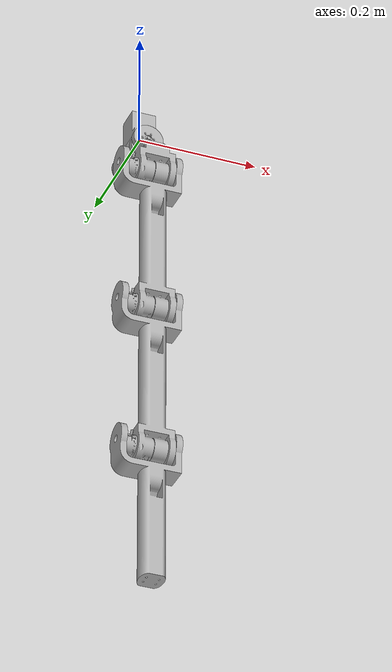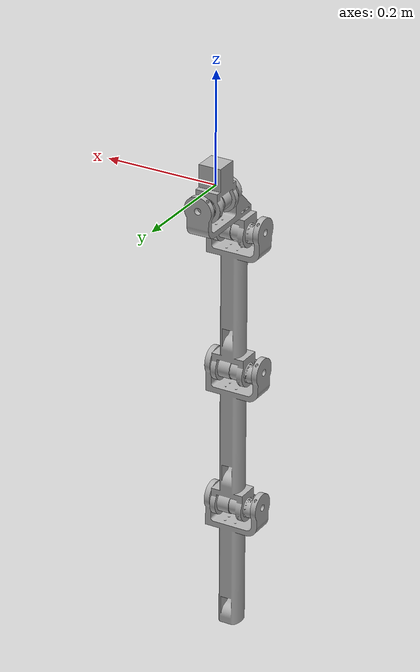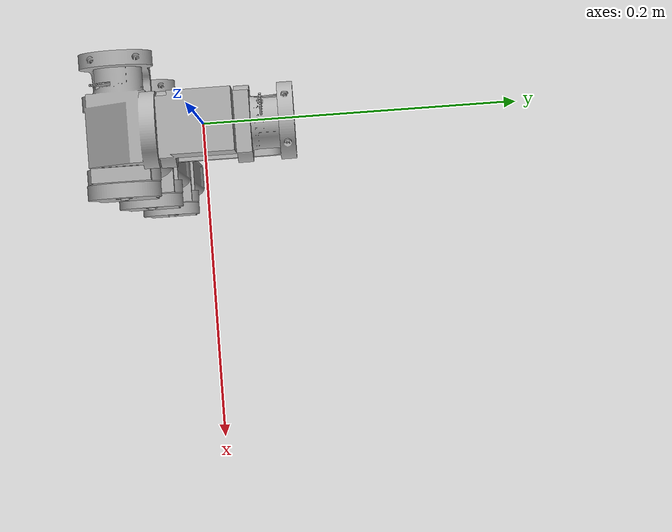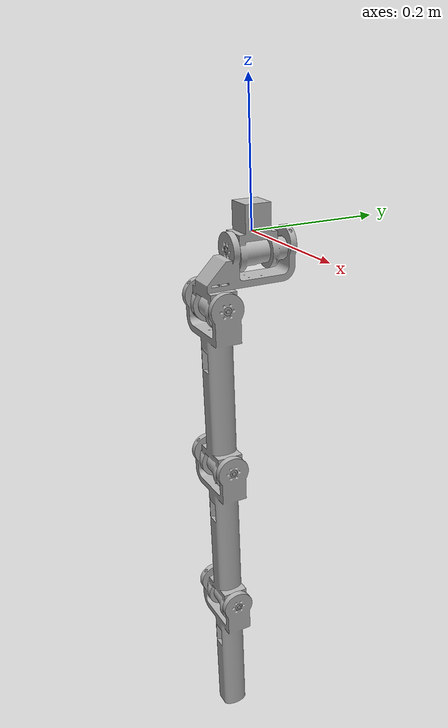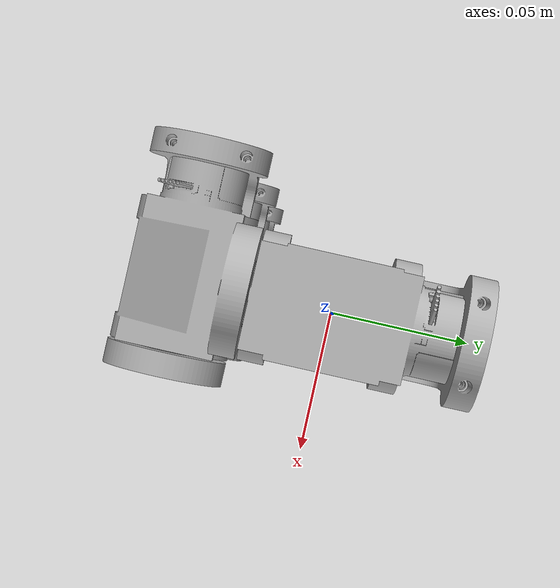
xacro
<?xml version="1.0" ?>
<robot name="robotleg_0_1" xmlns:xacro="http://www.ros.org/wiki/xacro">

<xacro:include filename="$(find robotleg_0_1_description)/urdf/materials.xacro" />
<xacro:include filename="$(find robotleg_0_1_description)/urdf/robotleg_0_1.trans" />
<xacro:include filename="$(find robotleg_0_1_description)/urdf/robotleg_0_1.gazebo" />
<link name="base_link">
  <inertial>
    <origin rpy="0 0 0" xyz="-9.369973914028342e-06 0.001690566162448438 -0.008146420072387993"/>
    <mass value="1.3507716732240094"/>
    <inertia ixx="0.001302" ixy="0.0" ixz="-0.0" iyy="0.001034" iyz="4.9e-05" izz="0.000604"/>
  </inertial>
  <visual>
    <origin rpy="0 0 0" xyz="0 0 0"/>
    <geometry>
      <mesh filename="package://robotleg_0_1_description/meshes/base_link.stl" scale="0.001 0.001 0.001"/>
    </geometry>
    <material name="silver_default"/>
  </visual>
  <collision>
    <origin rpy="0 0 0" xyz="0 0 0"/>
    <geometry>
      <mesh filename="package://robotleg_0_1_description/meshes/base_link.stl" scale="0.001 0.001 0.001"/>
    </geometry>
  </collision>
</link>

<link name="joint_3">
  <inertial>
    <origin rpy="0 0 0" xyz="1.441120806777516e-06 0.008079805361456853 0.00018129790863215256"/>
    <mass value="0.0197994934350134"/>
    <inertia ixx="1e-06" ixy="0.0" ixz="0.0" iyy="2e-06" iyz="0.0" izz="1e-06"/>
  </inertial>
  <visual>
    <origin rpy="0 0 0" xyz="-0.0 0.042 0.023"/>
    <geometry>
      <mesh filename="package://robotleg_0_1_description/meshes/joint_3.stl" scale="0.001 0.001 0.001"/>
    </geometry>
    <material name="silver_default"/>
  </visual>
  <collision>
    <origin rpy="0 0 0" xyz="-0.0 0.042 0.023"/>
    <geometry>
      <mesh filename="package://robotleg_0_1_description/meshes/joint_3.stl" scale="0.001 0.001 0.001"/>
    </geometry>
  </collision>
</link>

<link name="link1_1">
  <inertial>
    <origin rpy="0 0 0" xyz="0.020807189366088122 -0.016765663276947233 -0.07776140281647813"/>
    <mass value="1.8576009926494503"/>
    <inertia ixx="0.004643" ixy="-5.9e-05" ixz="-6.9e-05" iyy="0.002099" iyz="-0.001197" izz="0.003578"/>
  </inertial>
  <visual>
    <origin rpy="0 0 0" xyz="0.022024 0.018549 -0.005622"/>
    <geometry>
      <mesh filename="package://robotleg_0_1_description/meshes/link1_1.stl" scale="0.001 0.001 0.001"/>
    </geometry>
    <material name="silver_default"/>
  </visual>
  <collision>
    <origin rpy="0 0 0" xyz="0.022024 0.018549 -0.005622"/>
    <geometry>
      <mesh filename="package://robotleg_0_1_description/meshes/link1_1.stl" scale="0.001 0.001 0.001"/>
    </geometry>
  </collision>
</link>

<link name="joint_6">
  <inertial>
    <origin rpy="0 0 0" xyz="-0.023992305361456905 -0.12347655887919318 -0.12661905145627314"/>
    <mass value="0.0197994934350134"/>
    <inertia ixx="2e-06" ixy="-0.0" ixz="-0.0" iyy="1e-06" iyz="0.0" izz="1e-06"/>
  </inertial>
  <visual>
    <origin rpy="0 0 0" xyz="-0.057925 -0.062678 -0.030822"/>
    <geometry>
      <mesh filename="package://robotleg_0_1_description/meshes/joint_6.stl" scale="0.001 0.001 0.001"/>
    </geometry>
    <material name="silver_default"/>
  </visual>
  <collision>
    <origin rpy="0 0 0" xyz="-0.057925 -0.062678 -0.030822"/>
    <geometry>
      <mesh filename="package://robotleg_0_1_description/meshes/joint_6.stl" scale="0.001 0.001 0.001"/>
    </geometry>
  </collision>
</link>

<link name="link2_1">
  <inertial>
    <origin rpy="0 0 0" xyz="0.05200332643037483 0.059041440639978134 -0.17878651707812276"/>
    <mass value="3.1185512630003815"/>
    <inertia ixx="0.026318" ixy="-0.0" ixz="0.000423" iyy="0.027478" iyz="-8.6e-05" izz="0.001989"/>
  </inertial>
  <visual>
    <origin rpy="0 0 0" xyz="0.054417 0.119833 0.065355"/>
    <geometry>
      <mesh filename="package://robotleg_0_1_description/meshes/link2_1.stl" scale="0.001 0.001 0.001"/>
    </geometry>
    <material name="silver_default"/>
  </visual>
  <collision>
    <origin rpy="0 0 0" xyz="0.054417 0.119833 0.065355"/>
    <geometry>
      <mesh filename="package://robotleg_0_1_description/meshes/link2_1.stl" scale="0.001 0.001 0.001"/>
    </geometry>
  </collision>
</link>

<link name="joint_7">
  <inertial>
    <origin rpy="0 0 0" xyz="0.18383269463854318 0.10388894112080688 -0.020262400821178972"/>
    <mass value="0.0197994934350134"/>
    <inertia ixx="2e-06" ixy="-0.0" ixz="-0.0" iyy="1e-06" iyz="0.0" izz="1e-06"/>
  </inertial>
  <visual>
    <origin rpy="0 0 0" xyz="0.1499 0.164675 0.331713"/>
    <geometry>
      <mesh filename="package://robotleg_0_1_description/meshes/joint_7.stl" scale="0.001 0.001 0.001"/>
    </geometry>
    <material name="silver_default"/>
  </visual>
  <collision>
    <origin rpy="0 0 0" xyz="0.1499 0.164675 0.331713"/>
    <geometry>
      <mesh filename="package://robotleg_0_1_description/meshes/joint_7.stl" scale="0.001 0.001 0.001"/>
    </geometry>
  </collision>
</link>

<link name="link3_1">
  <inertial>
    <origin rpy="0 0 0" xyz="0.30818132657208375 0.05903494071668896 -0.1787758661627638"/>
    <mass value="3.118551263000379"/>
    <inertia ixx="0.026318" ixy="-0.0" ixz="0.000423" iyy="0.027478" iyz="-8.6e-05" izz="0.001989"/>
  </inertial>
  <visual>
    <origin rpy="0 0 0" xyz="0.310595 0.119814 0.321544"/>
    <geometry>
      <mesh filename="package://robotleg_0_1_description/meshes/link3_1.stl" scale="0.001 0.001 0.001"/>
    </geometry>
    <material name="silver_default"/>
  </visual>
  <collision>
    <origin rpy="0 0 0" xyz="0.310595 0.119814 0.321544"/>
    <geometry>
      <mesh filename="package://robotleg_0_1_description/meshes/link3_1.stl" scale="0.001 0.001 0.001"/>
    </geometry>
  </collision>
</link>

<link name="joint_8">
  <inertial>
    <origin rpy="0 0 0" xyz="-0.008080305361456805 -1.1558879193053484e-05 -0.14364075018608474"/>
    <mass value="0.0197994934350134"/>
    <inertia ixx="2e-06" ixy="-0.0" ixz="-0.0" iyy="1e-06" iyz="0.0" izz="1e-06"/>
  </inertial>
  <visual>
    <origin rpy="0 0 0" xyz="-0.042013 0.060762 0.464513"/>
    <geometry>
      <mesh filename="package://robotleg_0_1_description/meshes/joint_8.stl" scale="0.001 0.001 0.001"/>
    </geometry>
    <material name="silver_default"/>
  </visual>
  <collision>
    <origin rpy="0 0 0" xyz="-0.042013 0.060762 0.464513"/>
    <geometry>
      <mesh filename="package://robotleg_0_1_description/meshes/joint_8.stl" scale="0.001 0.001 0.001"/>
    </geometry>
  </collision>
</link>

<link name="link4_1">
  <inertial>
    <origin rpy="0 0 0" xyz="0.5644595574052269 0.06377049888654981 -0.1459705798798232"/>
    <mass value="2.270179589776367"/>
    <inertia ixx="0.011994" ixy="0.0" ixz="0.000468" iyy="0.012888" iyz="-8.5e-05" izz="0.001521"/>
  </inertial>
  <visual>
    <origin rpy="0 0 0" xyz="0.566774 0.124558 0.569484"/>
    <geometry>
      <mesh filename="package://robotleg_0_1_description/meshes/link4_1.stl" scale="0.001 0.001 0.001"/>
    </geometry>
    <material name="silver_default"/>
  </visual>
  <collision>
    <origin rpy="0 0 0" xyz="0.566774 0.124558 0.569484"/>
    <geometry>
      <mesh filename="package://robotleg_0_1_description/meshes/link4_1.stl" scale="0.001 0.001 0.001"/>
    </geometry>
  </collision>
</link>

<joint name="Rev22" type="continuous">
  <origin rpy="0 0 0" xyz="0.0 -0.042 -0.023"/>
  <parent link="base_link"/>
  <child link="joint_3"/>
  <axis xyz="-0.0 -1.0 -0.0"/>
</joint>

<joint name="Rigid23" type="fixed">
  <origin rpy="0 0 0" xyz="-0.022024 0.023451 0.028622"/>
  <parent link="joint_3"/>
  <child link="link1_1"/>
</joint>

<joint name="Rev24" type="continuous">
  <origin rpy="0 0 0" xyz="0.079949 0.081227 0.0252"/>
  <parent link="link1_1"/>
  <child link="joint_6"/>
  <axis xyz="1.0 -0.0 0.0"/>
</joint>

<joint name="Rigid25" type="fixed">
  <origin rpy="0 0 0" xyz="-0.112342 -0.182511 -0.096177"/>
  <parent link="joint_6"/>
  <child link="link2_1"/>
</joint>

<joint name="Rev26" type="continuous">
  <origin rpy="0 0 0" xyz="-0.095483 -0.044842 -0.266358"/>
  <parent link="link2_1"/>
  <child link="joint_7"/>
  <axis xyz="1.0 -0.0 0.0"/>
</joint>

<joint name="Rigid27" type="fixed">
  <origin rpy="0 0 0" xyz="-0.160695 0.044861 0.010169"/>
  <parent link="joint_7"/>
  <child link="link3_1"/>
</joint>

<joint name="Rev28" type="continuous">
  <origin rpy="0 0 0" xyz="0.352608 0.059052 -0.142969"/>
  <parent link="link3_1"/>
  <child link="joint_8"/>
  <axis xyz="1.0 -0.0 -0.0"/>
</joint>

<joint name="Rigid29" type="fixed">
  <origin rpy="0 0 0" xyz="-0.608787 -0.063796 -0.104971"/>
  <parent link="joint_8"/>
  <child link="link4_1"/>
</joint>

</robot>

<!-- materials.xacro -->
<robot name="robotleg_0_1" xmlns:xacro="http://www.ros.org/wiki/xacro" >

<material name="silver_default">
  <color rgba="0.700 0.700 0.700 1.000"/>
</material>

</robot>

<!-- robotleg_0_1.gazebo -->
<robot name="robotleg_0_1" xmlns:xacro="http://www.ros.org/wiki/xacro" >

<xacro:property name="body_color" value="Gazebo/Silver" />

<gazebo>
  <plugin filename="libgazebo_ros_control.so" name="control"/>
</gazebo>
<gazebo reference="base_link">
  <material>${body_color}</material>
  <mu1>0.2</mu1>
  <mu2>0.2</mu2>
  <selfCollide>true</selfCollide>
  <gravity>true</gravity>
</gazebo>

<gazebo reference="joint_3">
  <material>${body_color}</material>
  <mu1>0.2</mu1>
  <mu2>0.2</mu2>
  <selfCollide>true</selfCollide>
</gazebo>

<gazebo reference="link1_1">
  <material>${body_color}</material>
  <mu1>0.2</mu1>
  <mu2>0.2</mu2>
  <selfCollide>true</selfCollide>
</gazebo>

<gazebo reference="joint_6">
  <material>${body_color}</material>
  <mu1>0.2</mu1>
  <mu2>0.2</mu2>
  <selfCollide>true</selfCollide>
</gazebo>

<gazebo reference="link2_1">
  <material>${body_color}</material>
  <mu1>0.2</mu1>
  <mu2>0.2</mu2>
  <selfCollide>true</selfCollide>
</gazebo>

<gazebo reference="joint_7">
  <material>${body_color}</material>
  <mu1>0.2</mu1>
  <mu2>0.2</mu2>
  <selfCollide>true</selfCollide>
</gazebo>

<gazebo reference="link3_1">
  <material>${body_color}</material>
  <mu1>0.2</mu1>
  <mu2>0.2</mu2>
  <selfCollide>true</selfCollide>
</gazebo>

<gazebo reference="joint_8">
  <material>${body_color}</material>
  <mu1>0.2</mu1>
  <mu2>0.2</mu2>
  <selfCollide>true</selfCollide>
</gazebo>

<gazebo reference="link4_1">
  <material>${body_color}</material>
  <mu1>0.2</mu1>
  <mu2>0.2</mu2>
  <selfCollide>true</selfCollide>
</gazebo>

</robot>
